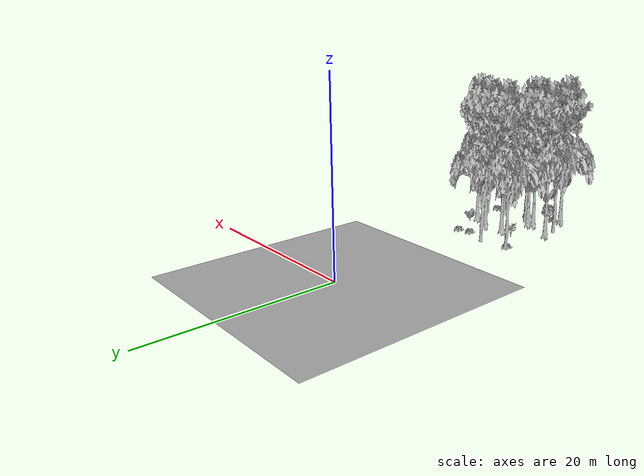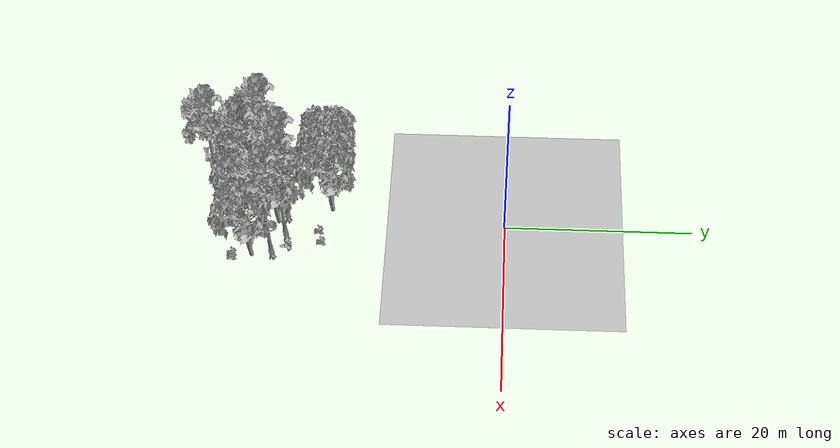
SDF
<sdf version="1.7">
 <world name="default">
  <model name="ground_plane">
   <static>1</static>
   <link name="link">
    <collision name="collision">
     <pose>-50 0 0 0 -0 0</pose>
     <geometry><plane><normal>0 0 1</normal><size>80 80</size></plane></geometry>
     <surface><contact><ode><min_depth>0.01</min_depth><max_vel>0</max_vel></ode></contact></surface>
    </collision>
    <visual name="grass">
     <cast_shadows>0</cast_shadows>
     <geometry>
      <mesh>
       <scale>0.46714285714285714 0.46714285714285714 0.1</scale>
       <uri>file://grass_plane/meshes/grass_plane.dae</uri>
      </mesh>
     </geometry>
    </visual>
   </link>
  </model>
  <model name="Tree 16">
   <static>1</static>
   <pose>-0.8902189056149439 -27.28137795548114 0 1.57079 -0 0</pose>
   <link name="link">
    <collision name="collision">
     <geometry><mesh><scale>3.5 5 3.5</scale><uri>model://tree_2/meshes/tree_2.obj</uri></mesh></geometry>
    </collision>
    <visual name="visual">
     <geometry><mesh><scale>3.5 5 3.5</scale><uri>model://tree_2/meshes/tree_2.obj</uri></mesh></geometry>
    </visual>
   </link>
  </model>
  <model name="Tree 20">
   <static>1</static>
   <pose>-1.7390798904137128 -27.611910803773718 0 1.57079 -0 0</pose>
   <link name="link">
    <collision name="collision">
     <geometry><mesh><scale>3.5 5 3.5</scale><uri>model://tree_9/meshes/tree_9.obj</uri></mesh></geometry>
    </collision>
    <visual name="visual">
     <geometry><mesh><scale>3.5 5 3.5</scale><uri>model://tree_9/meshes/tree_9.obj</uri></mesh></geometry>
    </visual>
   </link>
  </model>
  <model name="Tree 82">
   <static>1</static>
   <pose>1.8530145065455699 -23.29882559456422 0 1.57079 -0 0</pose>
   <link name="link">
    <collision name="collision">
     <geometry><mesh><scale>3.5 5 3.5</scale><uri>model://tree_9/meshes/tree_9.obj</uri></mesh></geometry>
    </collision>
    <visual name="visual">
     <geometry><mesh><scale>3.5 5 3.5</scale><uri>model://tree_9/meshes/tree_9.obj</uri></mesh></geometry>
    </visual>
   </link>
  </model>
  <model name="Tree 114">
   <static>1</static>
   <pose>-0.5695984768484266 -23.343671877963843 0 1.57079 -0 0</pose>
   <link name="link">
    <collision name="collision">
     <geometry><mesh><scale>3.5 5 3.5</scale><uri>model://tree_9/meshes/tree_9.obj</uri></mesh></geometry>
    </collision>
    <visual name="visual">
     <geometry><mesh><scale>3.5 5 3.5</scale><uri>model://tree_9/meshes/tree_9.obj</uri></mesh></geometry>
    </visual>
   </link>
  </model>
  <model name="Tree 164">
   <static>1</static>
   <pose>-1.188278815357215 -27.334887267356443 0 1.57079 -0 0</pose>
   <link name="link">
    <collision name="collision">
     <geometry><mesh><scale>3.5 5 3.5</scale><uri>model://tree_9/meshes/tree_9.obj</uri></mesh></geometry>
    </collision>
    <visual name="visual">
     <geometry><mesh><scale>3.5 5 3.5</scale><uri>model://tree_9/meshes/tree_9.obj</uri></mesh></geometry>
    </visual>
   </link>
  </model>
  <model name="Tree 190">
   <static>1</static>
   <pose>-3.1795806454655633 -30.897066083045033 0 1.57079 -0 0</pose>
   <link name="link">
    <collision name="collision">
     <geometry><mesh><scale>3.5 5 3.5</scale><uri>model://tree_9/meshes/tree_9.obj</uri></mesh></geometry>
    </collision>
    <visual name="visual">
     <geometry><mesh><scale>3.5 5 3.5</scale><uri>model://tree_9/meshes/tree_9.obj</uri></mesh></geometry>
    </visual>
   </link>
  </model>
  <model name="Tree 193">
   <static>1</static>
   <pose>4.393445087990678 -26.700036471551563 0 1.57079 -0 0</pose>
   <link name="link">
    <collision name="collision">
     <geometry><mesh><scale>3.5 5 3.5</scale><uri>model://tree_2/meshes/tree_2.obj</uri></mesh></geometry>
    </collision>
    <visual name="visual">
     <geometry><mesh><scale>3.5 5 3.5</scale><uri>model://tree_2/meshes/tree_2.obj</uri></mesh></geometry>
    </visual>
   </link>
  </model>
  <model name="Tree 250">
   <static>1</static>
   <pose>4.2522720590043335 -24.564847091363493 0 1.57079 -0 0</pose>
   <link name="link">
    <collision name="collision">
     <geometry><mesh><scale>3.5 5 3.5</scale><uri>model://tree_9/meshes/tree_9.obj</uri></mesh></geometry>
    </collision>
    <visual name="visual">
     <geometry><mesh><scale>3.5 5 3.5</scale><uri>model://tree_9/meshes/tree_9.obj</uri></mesh></geometry>
    </visual>
   </link>
  </model>
  <model name="Tree 366">
   <static>1</static>
   <pose>-4.874019340912923 -25.76518511501356 0 1.57079 -0 0</pose>
   <link name="link">
    <collision name="collision">
     <geometry><mesh><scale>3.5 5 3.5</scale><uri>model://tree_9/meshes/tree_9.obj</uri></mesh></geometry>
    </collision>
    <visual name="visual">
     <geometry><mesh><scale>3.5 5 3.5</scale><uri>model://tree_9/meshes/tree_9.obj</uri></mesh></geometry>
    </visual>
   </link>
  </model>
  <model name="Tree 472">
   <static>1</static>
   <pose>-5.2463267028696094 -26.888351014877188 0 1.57079 -0 0</pose>
   <link name="link">
    <collision name="collision">
     <geometry><mesh><scale>3.5 5 3.5</scale><uri>model://tree_2/meshes/tree_2.obj</uri></mesh></geometry>
    </collision>
    <visual name="visual">
     <geometry><mesh><scale>3.5 5 3.5</scale><uri>model://tree_2/meshes/tree_2.obj</uri></mesh></geometry>
    </visual>
   </link>
  </model>
  <model name="Tree 495">
   <static>1</static>
   <pose>0.0171242285996982 -24.260342731233344 0 1.57079 -0 0</pose>
   <link name="link">
    <collision name="collision">
     <geometry><mesh><scale>3.5 5 3.5</scale><uri>model://tree_2/meshes/tree_2.obj</uri></mesh></geometry>
    </collision>
    <visual name="visual">
     <geometry><mesh><scale>3.5 5 3.5</scale><uri>model://tree_2/meshes/tree_2.obj</uri></mesh></geometry>
    </visual>
   </link>
  </model>
  <model name="Tree 564">
   <static>1</static>
   <pose>-5.084607059260861 -18.87054830077778 0 1.57079 -0 0</pose>
   <link name="link">
    <collision name="collision">
     <geometry><mesh><scale>3.5 5 3.5</scale><uri>model://tree_2/meshes/tree_2.obj</uri></mesh></geometry>
    </collision>
    <visual name="visual">
     <geometry><mesh><scale>3.5 5 3.5</scale><uri>model://tree_2/meshes/tree_2.obj</uri></mesh></geometry>
    </visual>
   </link>
  </model>
  <model name="Tree 601">
   <static>1</static>
   <pose>-1.7829799703192464 -18.627625897982043 0 1.57079 -0 0</pose>
   <link name="link">
    <collision name="collision">
     <geometry><mesh><scale>3.5 5 3.5</scale><uri>model://tree_2/meshes/tree_2.obj</uri></mesh></geometry>
    </collision>
    <visual name="visual">
     <geometry><mesh><scale>3.5 5 3.5</scale><uri>model://tree_2/meshes/tree_2.obj</uri></mesh></geometry>
    </visual>
   </link>
  </model>
  <model name="Bush 52">
   <static>1</static>
   <pose>-4.790151860866381 -19.35013185265019 0 1.57079 -0 0</pose>
   <link name="link">
    <collision name="collision">
     <geometry><mesh><scale>2 2 2</scale><uri>model://bush_2/meshes/bush_2.obj</uri></mesh></geometry>
     <surface><contact><collide_without_contact>false</collide_without_contact></contact></surface>
    </collision>
    <visual name="visual">
     <geometry><mesh><scale>2 2 2</scale><uri>model://bush_2/meshes/bush_2.obj</uri></mesh></geometry>
    </visual>
   </link>
  </model>
  <model name="Bush 57">
   <static>1</static>
   <pose>4.694866033963805 -28.805531561062008 0 1.57079 -0 0</pose>
   <link name="link">
    <collision name="collision">
     <geometry><mesh><scale>2 2 2</scale><uri>model://bush_2/meshes/bush_2.obj</uri></mesh></geometry>
     <surface><contact><collide_without_contact>false</collide_without_contact></contact></surface>
    </collision>
    <visual name="visual">
     <geometry><mesh><scale>2 2 2</scale><uri>model://bush_2/meshes/bush_2.obj</uri></mesh></geometry>
    </visual>
   </link>
  </model>
  <model name="Bush 92">
   <static>1</static>
   <pose>0.4327408939872299 -29.294879300187127 0 1.57079 -0 0</pose>
   <link name="link">
    <collision name="collision">
     <geometry><mesh><scale>2 2 2</scale><uri>model://bush_2/meshes/bush_2.obj</uri></mesh></geometry>
     <surface><contact><collide_without_contact>false</collide_without_contact></contact></surface>
    </collision>
    <visual name="visual">
     <geometry><mesh><scale>2 2 2</scale><uri>model://bush_2/meshes/bush_2.obj</uri></mesh></geometry>
    </visual>
   </link>
  </model>
  <model name="Bush 158">
   <static>1</static>
   <pose>-2.735124461229532 -30.16378744613131 0 1.57079 -0 0</pose>
   <link name="link">
    <collision name="collision">
     <geometry><mesh><scale>2 2 2</scale><uri>model://bush_2/meshes/bush_2.obj</uri></mesh></geometry>
     <surface><contact><collide_without_contact>false</collide_without_contact></contact></surface>
    </collision>
    <visual name="visual">
     <geometry><mesh><scale>2 2 2</scale><uri>model://bush_2/meshes/bush_2.obj</uri></mesh></geometry>
    </visual>
   </link>
  </model>
  <model name="Bush 170">
   <static>1</static>
   <pose>-1.8135125863525232 -30.686306629742486 0 1.57079 -0 0</pose>
   <link name="link">
    <collision name="collision">
     <geometry><mesh><scale>2 2 2</scale><uri>model://bush_1/meshes/bush_1.obj</uri></mesh></geometry>
     <surface><contact><collide_without_contact>false</collide_without_contact></contact></surface>
    </collision>
    <visual name="visual">
     <geometry><mesh><scale>2 2 2</scale><uri>model://bush_1/meshes/bush_1.obj</uri></mesh></geometry>
    </visual>
   </link>
  </model>
  <model name="Bush 198">
   <static>1</static>
   <pose>-2.97627578501352 -22.06666879727889 0 1.57079 -0 0</pose>
   <link name="link">
    <collision name="collision">
     <geometry><mesh><scale>2 2 2</scale><uri>model://bush_5/meshes/bush_5.obj</uri></mesh></geometry>
     <surface><contact><collide_without_contact>false</collide_without_contact></contact></surface>
    </collision>
    <visual name="visual">
     <geometry><mesh><scale>2 2 2</scale><uri>model://bush_5/meshes/bush_5.obj</uri></mesh></geometry>
    </visual>
   </link>
  </model>
  <model name="Bush 333">
   <static>1</static>
   <pose>4.233889362858719 -28.84105569763942 0 1.57079 -0 0</pose>
   <link name="link">
    <collision name="collision">
     <geometry><mesh><scale>2 2 2</scale><uri>model://bush_2/meshes/bush_2.obj</uri></mesh></geometry>
     <surface><contact><collide_without_contact>false</collide_without_contact></contact></surface>
    </collision>
    <visual name="visual">
     <geometry><mesh><scale>2 2 2</scale><uri>model://bush_2/meshes/bush_2.obj</uri></mesh></geometry>
    </visual>
   </link>
  </model>
  <model name="Bush 356">
   <static>1</static>
   <pose>3.8679689253369247 -22.853683059360847 0 1.57079 -0 0</pose>
   <link name="link">
    <collision name="collision">
     <geometry><mesh><scale>2 2 2</scale><uri>model://bush_0/meshes/bush_0.obj</uri></mesh></geometry>
     <surface><contact><collide_without_contact>false</collide_without_contact></contact></surface>
    </collision>
    <visual name="visual">
     <geometry><mesh><scale>2 2 2</scale><uri>model://bush_0/meshes/bush_0.obj</uri></mesh></geometry>
    </visual>
   </link>
  </model>
  <model name="Bush 493">
   <static>1</static>
   <pose>2.4793100172979337 -19.55051757200213 0 1.57079 -0 0</pose>
   <link name="link">
    <collision name="collision">
     <geometry><mesh><scale>2 2 2</scale><uri>model://bush_2/meshes/bush_2.obj</uri></mesh></geometry>
     <surface><contact><collide_without_contact>false</collide_without_contact></contact></surface>
    </collision>
    <visual name="visual">
     <geometry><mesh><scale>2 2 2</scale><uri>model://bush_2/meshes/bush_2.obj</uri></mesh></geometry>
    </visual>
   </link>
  </model>
  <model name="Bush 624">
   <static>1</static>
   <pose>1.0496238641115738 -19.878447512756487 0 1.57079 -0 0</pose>
   <link name="link">
    <collision name="collision">
     <geometry><mesh><scale>2 2 2</scale><uri>model://bush_2/meshes/bush_2.obj</uri></mesh></geometry>
     <surface><contact><collide_without_contact>false</collide_without_contact></contact></surface>
    </collision>
    <visual name="visual">
     <geometry><mesh><scale>2 2 2</scale><uri>model://bush_2/meshes/bush_2.obj</uri></mesh></geometry>
    </visual>
   </link>
  </model>
 </world>
</sdf>
